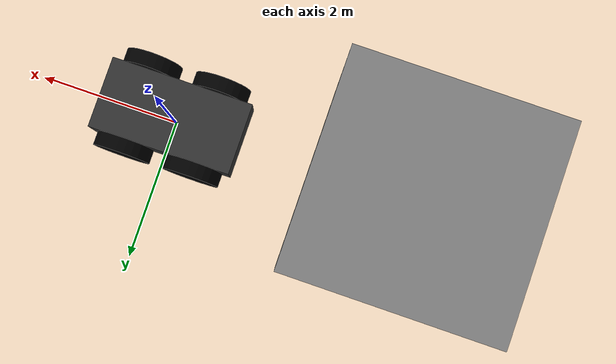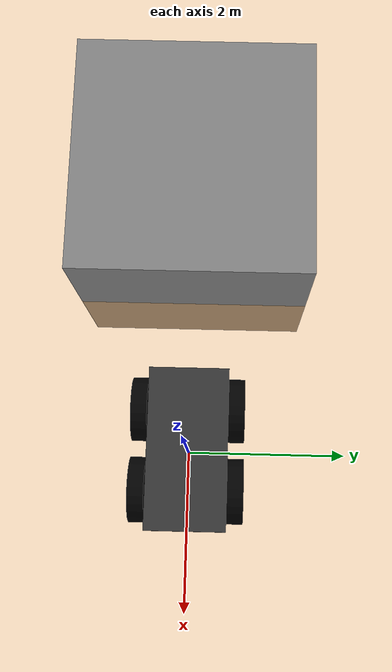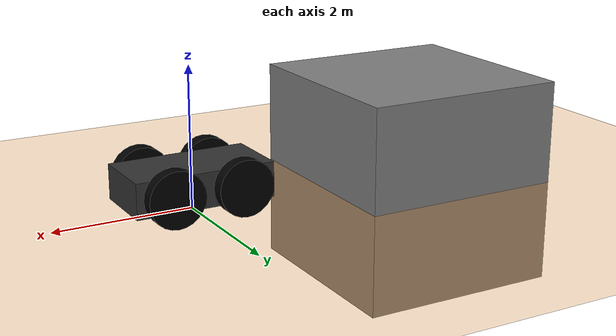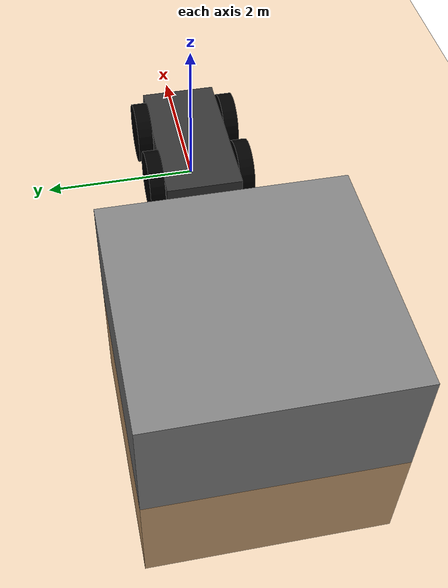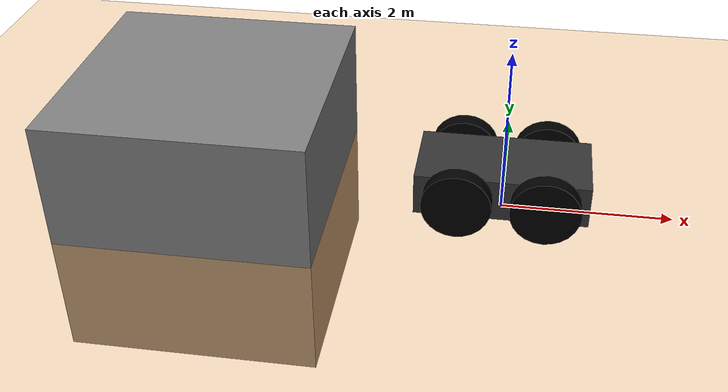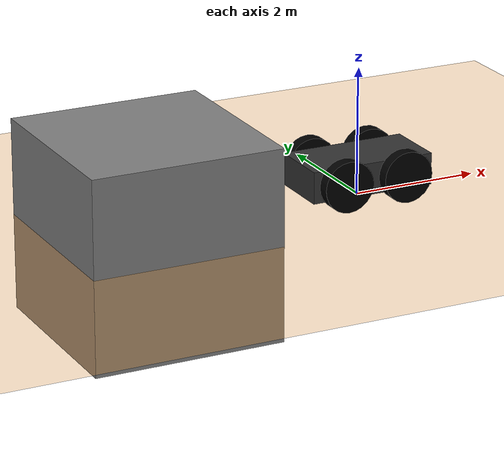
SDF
<?xml version="1.0" ?> <!-- Preface -->
<sdf version="1.9"> <!-- Preface -->
	<world name="sensing_rover_world"> <!-- World tag; everything else is nested here -->
    	<physics name="1ms" type="ode"> <!-- simulation physics definition-->
            <max_step_size>0.001</max_step_size> <!-- physics integration time step -->
            <real_time_factor>1.0</real_time_factor>
        </physics>
        <!-- these plugins are required by the GUI-->
        <plugin
            filename="libignition-gazebo-physics-system"
            name="ignition::gazebo::systems::Physics">
        </plugin>
        <plugin
      filename="gz-sim-sensors-system"
      name="gz::sim::systems::Sensors">
      <render_engine>ogre2</render_engine>
    </plugin>
        <plugin
            filename="libignition-gazebo-user-commands-system"
            name="ignition::gazebo::systems::UserCommands">
        </plugin>
        <plugin
            filename="libignition-gazebo-scene-broadcaster-system"
            name="ignition::gazebo::systems::SceneBroadcaster">
        </plugin>

        <!-- Other plugins can be specified, depending on thge developer's need-->
    <!-- Lighting definition -->
	<light type="directional" name="sun">
    	<cast_shadows>true</cast_shadows>
    	<pose>0 0 10 0 0 0</pose>
  	    <diffuse>0.8 0.8 0.8 1</diffuse>
	    <specular>0.2 0.2 0.2 1</specular>
        <attenuation>
        	<range>1000</range>
            <constant>0.9</constant>
            <linear>0.01</linear>
        	<quadratic>0.001</quadratic>
     	</attenuation>
            <direction>-0.5 0.1 -0.9</direction>
 	</light>
    <!-- Ground plane definition. Modeling the ground = modelling the terrain-->
    <model name="ground_plane">
		<static>true</static>  <!-- if set to false, the ground will be falling-->
		<link name="link"> <!-- the ground is set as a link as well-->
			<collision name="collision">
				<geometry>
					<plane>
						<normal>0 0 1</normal>
					</plane>
				</geometry>
			</collision>
			<visual name="visual">
				<geometry>
                   	<plane>
                   		<normal>0 0 1</normal>
      	              	<size>100 100</size>
                    </plane>
                </geometry>
	            <material>
            	<ambient>0.900 0.567 0.200 1</ambient>
                <diffuse>0.900 0.567 0.200 1</diffuse>
                <specular>0.2 0.2 0.2 1</specular>
	            </material>
            </visual>
        </link>
	</model>

    <!-- Rover model definition -->

    <model name='rover' canonical_link='chassis'>
        <pose relative_to='world'>0 0 0 0 0 3.1416</pose>

        <link name='chassis'>
            <pose relative_to='__model__'>0 0 0.4 0 0 0</pose>
            <inertial> <!--inertial properties of the link mass, inertia matix-->
                <mass>1.14395</mass>
                <inertia>
                    <ixx>0.095329</ixx>
                    <ixy>0</ixy>
                    <ixz>0</ixz>
                    <iyy>0.381317</iyy>
                    <iyz>0</iyz>
                    <izz>0.476646</izz>
                </inertia>
            </inertial>
            <visual name='visual'>
                <geometry>
                    <box>
                        <size>2.0 1.0 0.5</size>
                    </box>
                </geometry>
                <!--let's add color to our link-->
                <material>
                    <ambient>0.2 0.2 0.2 1</ambient>
                    <diffuse>0.2 0.2 0.2 1</diffuse>
                    <specular>0.2 0.2 0.2 1</specular>
                    // Change the color of ambient and diffuse to green
                    <ambient>0.0 0.8 0.0 1</ambient>
                    <diffuse>0.0 0.8 0.0 1</diffuse>
                </material>
            </visual>
            <collision name='collision'>
                <geometry>
                    <box>
                        <size>2.0 1.0 0.5</size>
                    </box>
                </geometry>
            </collision>

            <!-- add a lidar   -->
            <sensor name='gpu_lidar' type='gpu_lidar'>
                <topic>lidar_topic</topic>
                <update_rate>10</update_rate>
                <pose relative_to='chassis'>0.5 0 0 0 0 0</pose>
                <lidar>
                    <scan>
                        <horizontal>
                            <samples>90</samples> <!-- Number of samples along the horizontal direction -->
                            <resolution>1</resolution>
                            <min_angle>-0.785398</min_angle> <!-- radians -->
                            <max_angle>0.785398</max_angle> <!-- radians -->
                        </horizontal>
                        <vertical>
                            <samples>1</samples> <!-- Number of samples along the vertical direction -->
                            <resolution>1</resolution>
                            <min_angle>0</min_angle> <!-- radians -->
                            <max_angle>0</max_angle> <!-- radians -->
                        </vertical>
                    </scan>
                    <range>
                        <min>0.08</min> <!-- meters -->
                        <max>10.0</max> <!-- meters -->
                        <resolution>0.01</resolution>
                    </range>
                </lidar>
                <visualize>true</visualize>
            </sensor>
        <static>true</static>

        </link>

        <link name='left_wheel_rear'>
            <pose relative_to="chassis">-0.5 0.6 0 -1.5707 0 0</pose>
            <inertial>
                <mass>1</mass>
                <inertia>
                    <ixx>0.043333</ixx>
                    <ixy>0</ixy>
                    <ixz>0</ixz>
                    <iyy>0.043333</iyy>
                    <iyz>0</iyz>
                    <izz>0.08</izz>
                </inertia>
            </inertial>
            <visual name='visual'>
                <geometry>
                    <cylinder>
                        <radius>0.4</radius>
                        <length>0.2</length>
                    </cylinder>
                </geometry>
                <material>
                    <ambient>0.0 0.0 0.0 1</ambient>
                    <diffuse>0.0 0.0 0.0 1</diffuse>
                    <specular>0.0 0.0 0.0 1</specular>
                </material>
            </visual>
            <collision name='collision'>
                <geometry>
                    <cylinder>
                        <radius>0.4</radius>
                        <length>0.2</length>
                    </cylinder>
                </geometry>
            </collision>
        </link>
        <link name='right_wheel_rear'>
            <pose relative_to="chassis">-0.5 -0.6 0 -1.5707 0 0</pose> <!--angles are in radian-->
            <inertial>
                <mass>1</mass>
                <inertia>
                    <ixx>0.043333</ixx>
                    <ixy>0</ixy>
                    <ixz>0</ixz>
                    <iyy>0.043333</iyy>
                    <iyz>0</iyz>
                    <izz>0.08</izz>
                </inertia>
            </inertial>
            <visual name='visual'>
                <geometry>
                    <cylinder>
                        <radius>0.4</radius>
                        <length>0.2</length>
                    </cylinder>
                </geometry>
                <material>
                    <ambient>0.0 0.0 0.0 1</ambient>
                    <diffuse>0.0 0.0 0.0 1</diffuse>
                    <specular>0.0 0.0 0.0 1</specular>
                </material>
            </visual>
            <collision name='collision'>
                <geometry>
                    <cylinder>
                        <radius>0.4</radius>
                        <length>0.2</length>
                    </cylinder>
                </geometry>
            </collision>
        </link>
        <link name='left_wheel_front'>
            <pose relative_to="chassis">0.5 0.6 0 -1.5707 0 0</pose>
            <inertial>
                <mass>1</mass>
                <inertia>
                    <ixx>0.043333</ixx>
                    <ixy>0</ixy>
                    <ixz>0</ixz>
                    <iyy>0.043333</iyy>
                    <iyz>0</iyz>
                    <izz>0.08</izz>
                </inertia>
            </inertial>
            <visual name='visual'>
                <geometry>
                    <cylinder>
                        <radius>0.4</radius>
                        <length>0.2</length>
                    </cylinder>
                </geometry>
                <material>
                    <ambient>0.0 0.0 0.0 1</ambient>
                    <diffuse>0.0 0.0 0.0 1</diffuse>
                    <specular>0.0 0.0 0.0 1</specular>
                </material>
            </visual>
            <collision name='collision'>
                <geometry>
                    <cylinder>
                        <radius>0.4</radius>
                        <length>0.2</length>
                    </cylinder>
                </geometry>
            </collision>
        </link>
        <link name='right_wheel_front'>
            <pose relative_to="chassis">0.5 -0.6 0 -1.5707 0 0</pose> <!--angles are in radian-->
            <inertial>
                <mass>1</mass>
                <inertia>
                    <ixx>0.043333</ixx>
                    <ixy>0</ixy>
                    <ixz>0</ixz>
                    <iyy>0.043333</iyy>
                    <iyz>0</iyz>
                    <izz>0.08</izz>
                </inertia>
            </inertial>
            <visual name='visual'>
                <geometry>
                    <cylinder>
                        <radius>0.4</radius>
                        <length>0.2</length>
                    </cylinder>
                </geometry>
                <material>
                    <ambient>0.0 0.0 0.0 1</ambient>
                    <diffuse>0.0 0.0 0.0 1</diffuse>
                    <specular>0.0 0.0 0.0 1</specular>
                </material>
            </visual>
            <collision name='collision'>
                <geometry>
                    <cylinder>
                        <radius>0.4</radius>
                        <length>0.2</length>
                    </cylinder>
                </geometry>
            </collision>
        </link>

        <joint name='left_wheel_joint_rear' type='revolute'>
            <pose relative_to='left_wheel_rear'/>
            <parent>chassis</parent>
            <child>left_wheel_rear</child>
            <axis>
                <xyz expressed_in='__model__'>0 1 0</xyz>
                <limit>
                    <lower>-1.79769e+308</lower>
                    <upper>1.79769e+308</upper>
                </limit>
            </axis>
        </joint>

        <joint name='right_wheel_joint_rear' type='revolute'>
            <pose relative_to='right_wheel_rear'/>
            <parent>chassis</parent>
            <child>right_wheel_rear</child>
            <axis>
                <xyz expressed_in='__model__'>0 1 0</xyz>
                <limit>
                    <lower>-1.79769e+308</lower>
                    <upper>1.79769e+308</upper>
                </limit>
            </axis>
        </joint>

        <joint name='left_wheel_joint_front' type='revolute'>
            <pose relative_to='left_wheel_front'/>
            <parent>chassis</parent>
            <child>left_wheel_front</child>
            <axis>
                <xyz expressed_in='__model__'>0 1 0</xyz>
                <limit>
                    <lower>-1.79769e+308</lower>
                    <upper>1.79769e+308</upper>
                </limit>
            </axis>
        </joint>

        <joint name='right_wheel_joint_front' type='revolute'>
            <pose relative_to='right_wheel_front'/>
            <parent>chassis</parent>
            <child>right_wheel_front</child>
            <axis>
                <xyz expressed_in='__model__'>0 1 0</xyz>
                <limit>
                    <lower>-1.79769e+308</lower>
                    <upper>1.79769e+308</upper>
                </limit>
            </axis>
        </joint>

        <plugin
            filename="libignition-gazebo-diff-drive-system.so"
            name="ignition::gazebo::systems::DiffDrive">
            <left_joint>left_wheel_joint_rear</left_joint>
            <right_joint>right_wheel_joint_rear</right_joint>
            <left_joint>left_wheel_joint_front</left_joint>
            <right_joint>right_wheel_joint_front</right_joint>
            <wheel_separation>1.2</wheel_separation>
            <wheel_radius>0.4</wheel_radius>
            <odom_publish_frequency>1</odom_publish_frequency>
            <topic>rover_cmd_vel</topic>
        </plugin>

        <plugin
            filename="libignition-gazebo-pose-publisher-system.so"
            name="ignition::gazebo::systems::PosePublisher">
            <publish_link_pose>false</publish_link_pose>
			<publish_nested_model_pose>true</publish_nested_model_pose>
            <update_frequency>1</update_frequency> <!--Hz-->
        </plugin>

        <plugin
			filename="libignition-gazebo-joint-state-publisher-system"
			name="ignition::gazebo::systems::JointStatePublisher">
			<joint_name>right_wheel_joint_rear</joint_name>
            <joint_name>left_wheel_joint_rear</joint_name>
            <joint_name>right_wheel_joint_front</joint_name>
            <joint_name>left_wheel_joint_front</joint_name>
            <frequency>1</frequency>
			<topic>wheels_read</topic>
		</plugin>

    </model>

    <model name="lander" canonical_link="lander">
        <pose relative_to="world">-3.5 0 0 0 0 0</pose>
        <link name="lander">
            <collision name="lander_collision">
                <geometry>
                    <box>
                        <size>3 3 3</size>
                    </box>
                </geometry>
            </collision>
            <visual name="lander_visual">
                <geometry>
                    <box>
                        <size>3 3 3</size>
                    </box>
                </geometry>
                <material>
                    <ambient>0.5 0.5 0.5 1</ambient>
                    <diffuse>0.5 0.5 0.5 1</diffuse>
                    <specular>0.5 0.5 0.5 1</specular>
                </material>
            </visual>
        </link>
        <joint name="lander_joint" type="fixed">
            <parent>world</parent>
            <child>lander</child>
        </joint>

    </model>

   </world>
</sdf>
